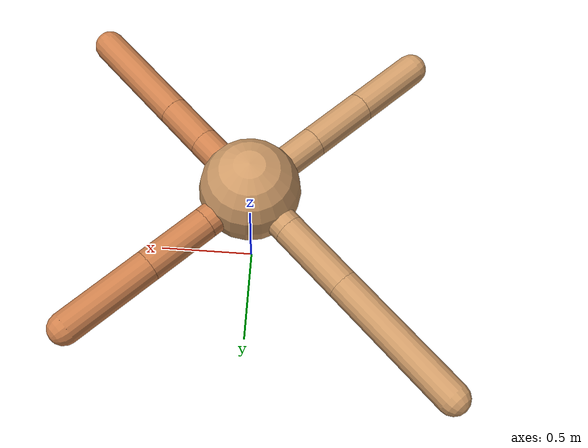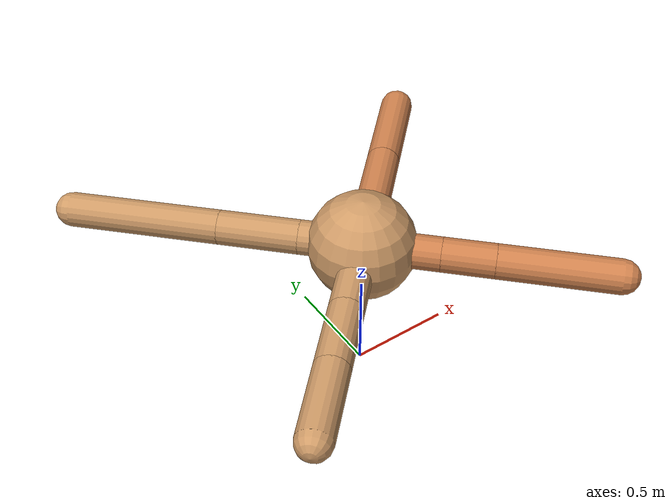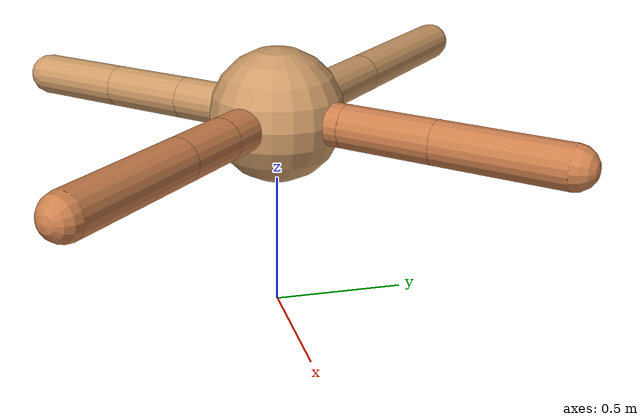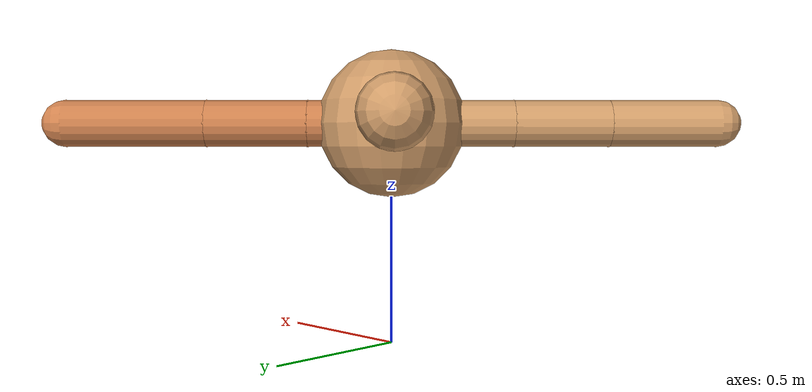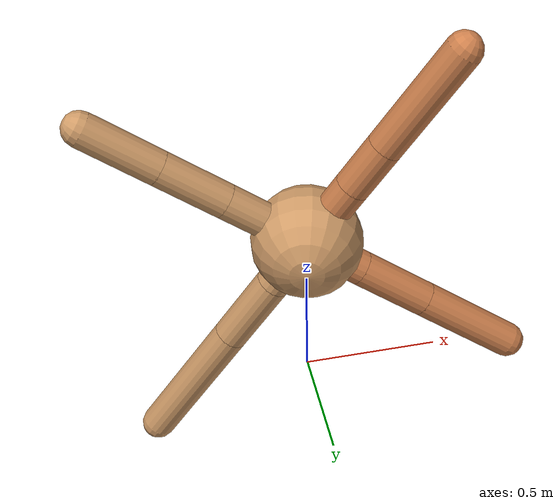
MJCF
<mujoco model="ant">
  <compiler angle="degree" coordinate="local" inertiafromgeom="true" />
  <option integrator="RK4" timestep="0.01" />
  <custom>
    <numeric data="0.0 0.0 0.55 1.0 0.0 0.0 0.0 0.0 1.0 0.0 -1.0 0.0 -1.0 0.0 1.0" name="init_qpos" />
  </custom>
  <default>
    <joint armature="1" damping="1" limited="true" />
    <geom conaffinity="0" condim="3" density="5.0" friction="1.5 0.1 0.1" margin="0.01" rgba="0.8 0.6 0.4 1" />
  </default>
  <worldbody>
    <body name="torso" pos="0 0 0.75">
      <geom name="torso_geom" pos="0 0 0" size="0.25" type="sphere" />

      <body name="front_left_leg" pos="0 0 0">
        <geom fromto="0.0 0.0 0.0 0.20066735474355346 0.20066735474355346 0.0" name="aux_1_geom" size="0.08" type="capsule" rgba=".8 .5 .3 1" />
        <body name="aux_1" pos="0.20066735474355346 0.20066735474355346 0.0">
          <joint axis="0 0 1" name="hip_1" pos="0.0 0.0 0.0" range="-40 40" type="hinge" />
          <geom fromto="0.0 0.0 0.0 0.24210179275702967 0.24210179275702967 0.0" name="left_leg_geom" size="0.08" type="capsule" rgba=".8 .5 .3 1" />
          <body pos="0.24210179275702967 0.24210179275702967 0.0" name="front_left_foot">
            <joint axis="-1 1 0" name="ankle_1" pos="0.0 0.0 0.0" range="30 100" type="hinge" />
            <geom fromto="0.0 0.0 0.0 0.3354580166902841 0.3354580166902841 0.0" name="left_ankle_geom" size="0.08" type="capsule" rgba=".8 .5 .3 1" />
          </body>
        </body>
      </body>
      <body name="front_right_leg" pos="0 0 0">
        <geom fromto="0.0 0.0 0.0 -0.20259238407638797 0.20259238407638797 0.0" name="aux_2_geom" size="0.08" type="capsule" />
        <body name="aux_2" pos="-0.20259238407638797 0.20259238407638797 0.0">
          <joint axis="0 0 1" name="hip_2" pos="0.0 0.0 0.0" range="-40 40" type="hinge" />
          <geom fromto="0.0 0.0 0.0 -0.2651659389760767 0.2651659389760767 0.0" name="right_leg_geom" size="0.08" type="capsule" />
          <body pos="-0.2651659389760767 0.2651659389760767 0.0" name="front_right_foot">
            <joint axis="1 1 0" name="ankle_2" pos="0.0 0.0 0.0" range="-100 -30" type="hinge" />
            <geom fromto="0.0 0.0 0.0 -0.4978386338195197 0.4978386338195197 0.0" name="right_ankle_geom" size="0.08" type="capsule" />
          </body>
        </body>
      </body>
      <body name="left_back_leg" pos="0 0 0">
        <geom fromto="0.0 0.0 0.0 -0.29296802116596793 -0.29296802116596793 0.0" name="aux_3_geom" size="0.08" type="capsule" />
        <body name="aux_3" pos="-0.29296802116596793 -0.29296802116596793 0.0">
          <joint axis="0 0 1" name="hip_3" pos="0.0 0.0 0.0" range="-40 40" type="hinge" />
          <geom fromto="0.0 0.0 0.0 -0.22865691742479607 -0.22865691742479607 0.0" name="back_leg_geom" size="0.08" type="capsule" />
          <body pos="-0.22865691742479607 -0.22865691742479607 0.0" name="left_back_foot">
            <joint axis="-1 1 0" name="ankle_3" pos="0.0 0.0 0.0" range="-100 -30" type="hinge" />
            <geom fromto="0.0 0.0 0.0 -0.25833578704086824 -0.25833578704086824 0.0" name="third_ankle_geom" size="0.08" type="capsule" />
          </body>
        </body>
      </body>
      <body name="right_back_leg" pos="0 0 0">
        <geom fromto="0.0 0.0 0.0 0.25201031458377093 -0.25201031458377093 0.0" name="aux_4_geom" size="0.08" type="capsule" rgba=".8 .5 .3 1" />
        <body name="aux_4" pos="0.25201031458377093 -0.25201031458377093 0.0">
          <joint axis="0 0 1" name="hip_4" pos="0.0 0.0 0.0" range="-40 40" type="hinge" />
          <geom fromto="0.0 0.0 0.0 0.1715108254845779 -0.1715108254845779 0.0" name="rightback_leg_geom" size="0.08" type="capsule" rgba=".8 .5 .3 1" />
          <body pos="0.1715108254845779 -0.1715108254845779 0.0" name="right_back_foot">
            <joint axis="1 1 0" name="ankle_4" pos="0.0 0.0 0.0" range="30 100" type="hinge" />
            <geom fromto="0.0 0.0 0.0 0.38650019023858273 -0.38650019023858273 0.0" name="fourth_ankle_geom" size="0.08" type="capsule" rgba=".8 .5 .3 1" />
          </body>
        </body>
      </body>
    </body>
  </worldbody>
  <actuator>
    <motor ctrllimited="true" ctrlrange="-1.0 1.0" joint="hip_4" gear="150" />
    <motor ctrllimited="true" ctrlrange="-1.0 1.0" joint="ankle_4" gear="150" />
    <motor ctrllimited="true" ctrlrange="-1.0 1.0" joint="hip_1" gear="150" />
    <motor ctrllimited="true" ctrlrange="-1.0 1.0" joint="ankle_1" gear="150" />
    <motor ctrllimited="true" ctrlrange="-1.0 1.0" joint="hip_2" gear="150" />
    <motor ctrllimited="true" ctrlrange="-1.0 1.0" joint="ankle_2" gear="150" />
    <motor ctrllimited="true" ctrlrange="-1.0 1.0" joint="hip_3" gear="150" />
    <motor ctrllimited="true" ctrlrange="-1.0 1.0" joint="ankle_3" gear="150" />
  </actuator>
</mujoco>
